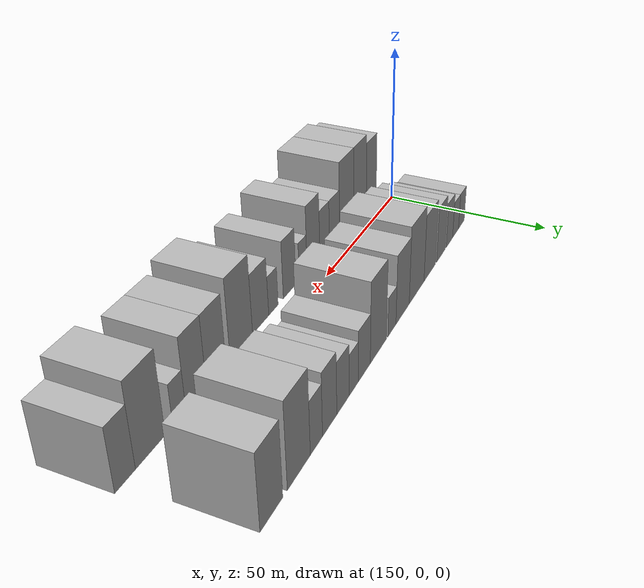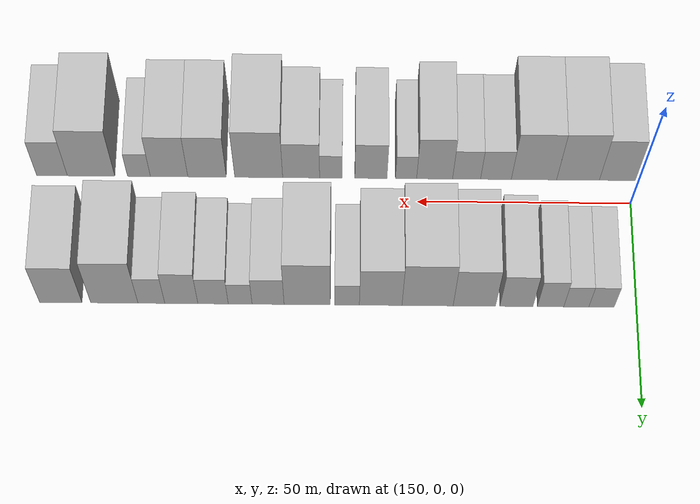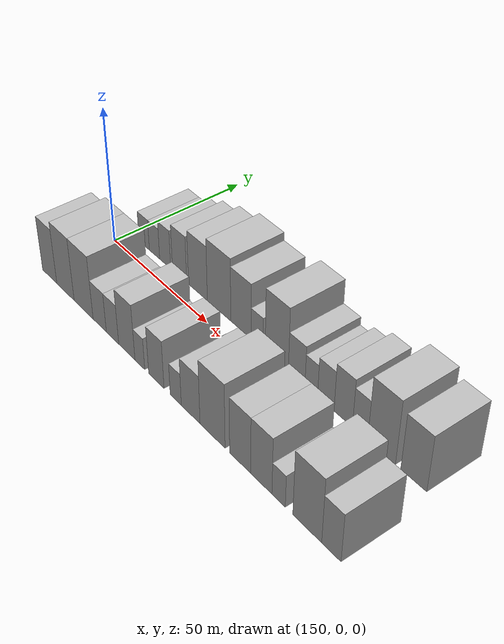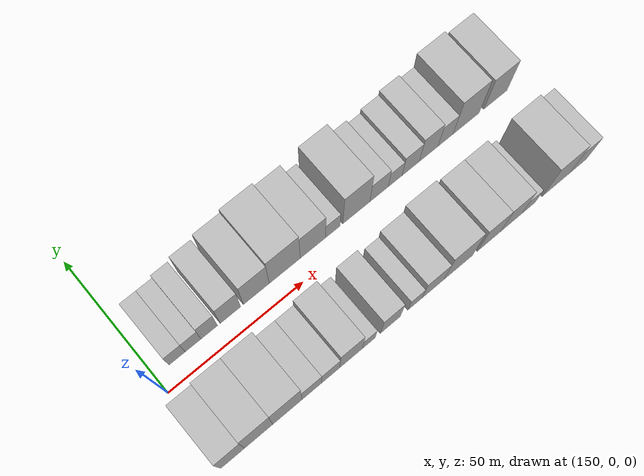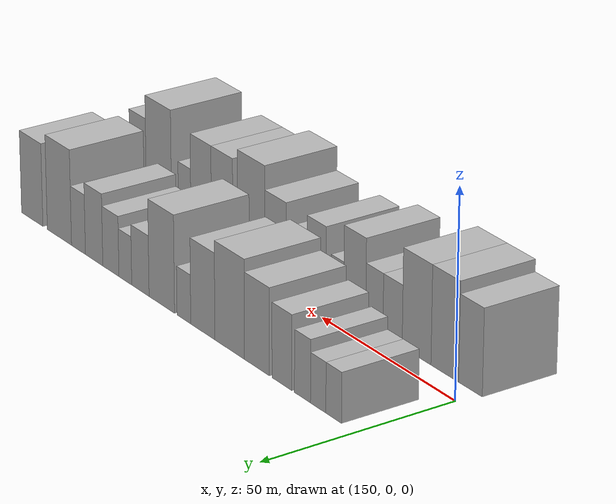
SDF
<sdf version="1.6">
 <world name="default">
  <model name="building_17">
   <static>1</static>
   <pose>158.0082 16.0000 0 0.000000 0.000000 1.570796</pose>
   <link name="link">
    <pose>0 0 6.00 0 0 0</pose>
    <collision name="collision"><geometry><box><size>20.0000 5.8166 12.0000</size></box></geometry></collision>
    <visual name="visual">
     <cast_shadows>0</cast_shadows>
     <geometry><box><size>20.0000 5.8166 12.0000</size></box></geometry>
     <material>
      <script>
       <uri>model://HANNAS_wall/materials/scripts</uri>
       <uri>model://HANNAS_wall/materials/textures</uri>
       <name>vrc/HANNAS_wall</name>
      </script>
     </material>
    </visual>
   </link>
  </model>
  <model name="building_18">
   <static>1</static>
   <pose>163.7879 16.0000 0 0.000000 0.000000 1.570796</pose>
   <link name="link">
    <pose>0 0 6.00 0 0 0</pose>
    <collision name="collision"><geometry><box><size>20.0000 5.7429 12.0000</size></box></geometry></collision>
    <visual name="visual">
     <cast_shadows>0</cast_shadows>
     <geometry><box><size>20.0000 5.7429 12.0000</size></box></geometry>
     <material>
      <script>
       <uri>model://HANNAS_wall/materials/scripts</uri>
       <uri>model://HANNAS_wall/materials/textures</uri>
       <name>vrc/HANNAS_wall</name>
      </script>
     </material>
    </visual>
   </link>
  </model>
  <model name="building_19">
   <static>1</static>
   <pose>169.6911 16.0000 0 0.000000 0.000000 1.570796</pose>
   <link name="link">
    <pose>0 0 7.50 0 0 0</pose>
    <collision name="collision"><geometry><box><size>20.0000 6.0635 15.0000</size></box></geometry></collision>
    <visual name="visual">
     <cast_shadows>0</cast_shadows>
     <geometry><box><size>20.0000 6.0635 15.0000</size></box></geometry>
     <material>
      <script>
       <uri>model://HANNAS_wall/materials/scripts</uri>
       <uri>model://HANNAS_wall/materials/textures</uri>
       <name>vrc/HANNAS_wall</name>
      </script>
     </material>
    </visual>
   </link>
  </model>
  <model name="building_20">
   <static>1</static>
   <pose>177.5209 16.0000 0 0.000000 0.000000 1.570796</pose>
   <link name="link">
    <pose>0 0 9.00 0 0 0</pose>
    <collision name="collision"><geometry><box><size>20.0000 7.5960 18.0000</size></box></geometry></collision>
    <visual name="visual">
     <cast_shadows>0</cast_shadows>
     <geometry><box><size>20.0000 7.5960 18.0000</size></box></geometry>
     <material>
      <script>
       <uri>model://HANNAS_wall/materials/scripts</uri>
       <uri>model://HANNAS_wall/materials/textures</uri>
       <name>vrc/HANNAS_wall</name>
      </script>
     </material>
    </visual>
   </link>
  </model>
  <model name="building_21">
   <static>1</static>
   <pose>187.1836 16.0000 0 0.000000 0.000000 1.570796</pose>
   <link name="link">
    <pose>0 0 10.50 0 0 0</pose>
    <collision name="collision"><geometry><box><size>20.0000 9.7294 21.0000</size></box></geometry></collision>
    <visual name="visual">
     <cast_shadows>0</cast_shadows>
     <geometry><box><size>20.0000 9.7294 21.0000</size></box></geometry>
     <material>
      <script>
       <uri>model://HANNAS_wall/materials/scripts</uri>
       <uri>model://HANNAS_wall/materials/textures</uri>
       <name>vrc/HANNAS_wall</name>
      </script>
     </material>
    </visual>
   </link>
  </model>
  <model name="building_22">
   <static>1</static>
   <pose>197.9205 16.0000 0 0.000000 0.000000 1.570796</pose>
   <link name="link">
    <pose>0 0 12.00 0 0 0</pose>
    <collision name="collision"><geometry><box><size>20.0000 11.7444 24.0000</size></box></geometry></collision>
    <visual name="visual">
     <cast_shadows>0</cast_shadows>
     <geometry><box><size>20.0000 11.7444 24.0000</size></box></geometry>
     <material>
      <script>
       <uri>model://HANNAS_wall/materials/scripts</uri>
       <uri>model://HANNAS_wall/materials/textures</uri>
       <name>vrc/HANNAS_wall</name>
      </script>
     </material>
    </visual>
   </link>
  </model>
  <model name="building_23">
   <static>1</static>
   <pose>208.6838 16.0000 0 0.000000 0.000000 1.570796</pose>
   <link name="link">
    <pose>0 0 10.50 0 0 0</pose>
    <collision name="collision"><geometry><box><size>20.0000 9.7822 21.0000</size></box></geometry></collision>
    <visual name="visual">
     <cast_shadows>0</cast_shadows>
     <geometry><box><size>20.0000 9.7822 21.0000</size></box></geometry>
     <material>
      <script>
       <uri>model://HANNAS_wall/materials/scripts</uri>
       <uri>model://HANNAS_wall/materials/textures</uri>
       <name>vrc/HANNAS_wall</name>
      </script>
     </material>
    </visual>
   </link>
  </model>
  <model name="building_24">
   <static>1</static>
   <pose>216.3989 16.0000 0 0.000000 0.000000 1.570796</pose>
   <link name="link">
    <pose>0 0 6.00 0 0 0</pose>
    <collision name="collision"><geometry><box><size>20.0000 5.6480 12.0000</size></box></geometry></collision>
    <visual name="visual">
     <cast_shadows>0</cast_shadows>
     <geometry><box><size>20.0000 5.6480 12.0000</size></box></geometry>
     <material>
      <script>
       <uri>model://HANNAS_wall/materials/scripts</uri>
       <uri>model://HANNAS_wall/materials/textures</uri>
       <name>vrc/HANNAS_wall</name>
      </script>
     </material>
    </visual>
   </link>
  </model>
  <model name="building_25">
   <static>1</static>
   <pose>225.5383 16.0000 0 0.000000 0.000000 1.570796</pose>
   <link name="link">
    <pose>0 0 12.00 0 0 0</pose>
    <collision name="collision"><geometry><box><size>20.0000 10.6308 24.0000</size></box></geometry></collision>
    <visual name="visual">
     <cast_shadows>0</cast_shadows>
     <geometry><box><size>20.0000 10.6308 24.0000</size></box></geometry>
     <material>
      <script>
       <uri>model://HANNAS_wall/materials/scripts</uri>
       <uri>model://HANNAS_wall/materials/textures</uri>
       <name>vrc/HANNAS_wall</name>
      </script>
     </material>
    </visual>
   </link>
  </model>
  <model name="building_26">
   <static>1</static>
   <pose>234.5276 16.0000 0 0.000000 0.000000 1.570796</pose>
   <link name="link">
    <pose>0 0 7.50 0 0 0</pose>
    <collision name="collision"><geometry><box><size>20.0000 7.3479 15.0000</size></box></geometry></collision>
    <visual name="visual">
     <cast_shadows>0</cast_shadows>
     <geometry><box><size>20.0000 7.3479 15.0000</size></box></geometry>
     <material>
      <script>
       <uri>model://HANNAS_wall/materials/scripts</uri>
       <uri>model://HANNAS_wall/materials/textures</uri>
       <name>vrc/HANNAS_wall</name>
      </script>
     </material>
    </visual>
   </link>
  </model>
  <model name="building_27">
   <static>1</static>
   <pose>240.9351 16.0000 0 0.000000 0.000000 1.570796</pose>
   <link name="link">
    <pose>0 0 6.00 0 0 0</pose>
    <collision name="collision"><geometry><box><size>20.0000 5.4671 12.0000</size></box></geometry></collision>
    <visual name="visual">
     <cast_shadows>0</cast_shadows>
     <geometry><box><size>20.0000 5.4671 12.0000</size></box></geometry>
     <material>
      <script>
       <uri>model://HANNAS_wall/materials/scripts</uri>
       <uri>model://HANNAS_wall/materials/textures</uri>
       <name>vrc/HANNAS_wall</name>
      </script>
     </material>
    </visual>
   </link>
  </model>
  <model name="building_28">
   <static>1</static>
   <pose>247.1524 16.0000 0 0.000000 0.000000 1.570796</pose>
   <link name="link">
    <pose>0 0 7.50 0 0 0</pose>
    <collision name="collision"><geometry><box><size>20.0000 6.9674 15.0000</size></box></geometry></collision>
    <visual name="visual">
     <cast_shadows>0</cast_shadows>
     <geometry><box><size>20.0000 6.9674 15.0000</size></box></geometry>
     <material>
      <script>
       <uri>model://HANNAS_wall/materials/scripts</uri>
       <uri>model://HANNAS_wall/materials/textures</uri>
       <name>vrc/HANNAS_wall</name>
      </script>
     </material>
    </visual>
   </link>
  </model>
  <model name="building_29">
   <static>1</static>
   <pose>254.4423 16.0000 0 0.000000 0.000000 1.570796</pose>
   <link name="link">
    <pose>0 0 9.00 0 0 0</pose>
    <collision name="collision"><geometry><box><size>20.0000 7.6125 18.0000</size></box></geometry></collision>
    <visual name="visual">
     <cast_shadows>0</cast_shadows>
     <geometry><box><size>20.0000 7.6125 18.0000</size></box></geometry>
     <material>
      <script>
       <uri>model://HANNAS_wall/materials/scripts</uri>
       <uri>model://HANNAS_wall/materials/textures</uri>
       <name>vrc/HANNAS_wall</name>
      </script>
     </material>
    </visual>
   </link>
  </model>
  <model name="building_30">
   <static>1</static>
   <pose>261.3294 16.0000 0 0.000000 0.000000 1.570796</pose>
   <link name="link">
    <pose>0 0 7.50 0 0 0</pose>
    <collision name="collision"><geometry><box><size>20.0000 6.1617 15.0000</size></box></geometry></collision>
    <visual name="visual">
     <cast_shadows>0</cast_shadows>
     <geometry><box><size>20.0000 6.1617 15.0000</size></box></geometry>
     <material>
      <script>
       <uri>model://HANNAS_wall/materials/scripts</uri>
       <uri>model://HANNAS_wall/materials/textures</uri>
       <name>vrc/HANNAS_wall</name>
      </script>
     </material>
    </visual>
   </link>
  </model>
  <model name="building_31">
   <static>1</static>
   <pose>269.8403 16.0000 0 0.000000 0.000000 1.570796</pose>
   <link name="link">
    <pose>0 0 12.00 0 0 0</pose>
    <collision name="collision"><geometry><box><size>20.0000 10.8602 24.0000</size></box></geometry></collision>
    <visual name="visual">
     <cast_shadows>0</cast_shadows>
     <geometry><box><size>20.0000 10.8602 24.0000</size></box></geometry>
     <material>
      <script>
       <uri>model://HANNAS_wall/materials/scripts</uri>
       <uri>model://HANNAS_wall/materials/textures</uri>
       <name>vrc/HANNAS_wall</name>
      </script>
     </material>
    </visual>
   </link>
  </model>
  <model name="building_32">
   <static>1</static>
   <pose>282.1423 16.0000 0 0.000000 0.000000 1.570796</pose>
   <link name="link">
    <pose>0 0 10.50 0 0 0</pose>
    <collision name="collision"><geometry><box><size>20.0000 9.7439 21.0000</size></box></geometry></collision>
    <visual name="visual">
     <cast_shadows>0</cast_shadows>
     <geometry><box><size>20.0000 9.7439 21.0000</size></box></geometry>
     <material>
      <script>
       <uri>model://HANNAS_wall/materials/scripts</uri>
       <uri>model://HANNAS_wall/materials/textures</uri>
       <name>vrc/HANNAS_wall</name>
      </script>
     </material>
    </visual>
   </link>
  </model>
  <model name="building_46">
   <static>1</static>
   <pose>152.7676 -16.0000 0 0.000000 0.000000 1.570796</pose>
   <link name="link">
    <pose>0 0 10.50 0 0 0</pose>
    <collision name="collision"><geometry><box><size>20.0000 8.5126 21.0000</size></box></geometry></collision>
    <visual name="visual">
     <cast_shadows>0</cast_shadows>
     <geometry><box><size>20.0000 8.5126 21.0000</size></box></geometry>
     <material>
      <script>
       <uri>model://HANNAS_wall/materials/scripts</uri>
       <uri>model://HANNAS_wall/materials/textures</uri>
       <name>vrc/HANNAS_wall</name>
      </script>
     </material>
    </visual>
   </link>
  </model>
  <model name="building_47">
   <static>1</static>
   <pose>162.0728 -16.0000 0 0.000000 0.000000 1.570796</pose>
   <link name="link">
    <pose>0 0 12.00 0 0 0</pose>
    <collision name="collision"><geometry><box><size>20.0000 10.0980 24.0000</size></box></geometry></collision>
    <visual name="visual">
     <cast_shadows>0</cast_shadows>
     <geometry><box><size>20.0000 10.0980 24.0000</size></box></geometry>
     <material>
      <script>
       <uri>model://HANNAS_wall/materials/scripts</uri>
       <uri>model://HANNAS_wall/materials/textures</uri>
       <name>vrc/HANNAS_wall</name>
      </script>
     </material>
    </visual>
   </link>
  </model>
  <model name="building_48">
   <static>1</static>
   <pose>172.4769 -16.0000 0 0.000000 0.000000 1.570796</pose>
   <link name="link">
    <pose>0 0 12.00 0 0 0</pose>
    <collision name="collision"><geometry><box><size>20.0000 10.7101 24.0000</size></box></geometry></collision>
    <visual name="visual">
     <cast_shadows>0</cast_shadows>
     <geometry><box><size>20.0000 10.7101 24.0000</size></box></geometry>
     <material>
      <script>
       <uri>model://HANNAS_wall/materials/scripts</uri>
       <uri>model://HANNAS_wall/materials/textures</uri>
       <name>vrc/HANNAS_wall</name>
      </script>
     </material>
    </visual>
   </link>
  </model>
  <model name="building_49">
   <static>1</static>
   <pose>181.4621 -16.0000 0 0.000000 0.000000 1.570796</pose>
   <link name="link">
    <pose>0 0 7.50 0 0 0</pose>
    <collision name="collision"><geometry><box><size>20.0000 7.2603 15.0000</size></box></geometry></collision>
    <visual name="visual">
     <cast_shadows>0</cast_shadows>
     <geometry><box><size>20.0000 7.2603 15.0000</size></box></geometry>
     <material>
      <script>
       <uri>model://HANNAS_wall/materials/scripts</uri>
       <uri>model://HANNAS_wall/materials/textures</uri>
       <name>vrc/HANNAS_wall</name>
      </script>
     </material>
    </visual>
   </link>
  </model>
  <model name="building_50">
   <static>1</static>
   <pose>188.4011 -16.0000 0 0.000000 0.000000 1.570796</pose>
   <link name="link">
    <pose>0 0 7.50 0 0 0</pose>
    <collision name="collision"><geometry><box><size>20.0000 6.6177 15.0000</size></box></geometry></collision>
    <visual name="visual">
     <cast_shadows>0</cast_shadows>
     <geometry><box><size>20.0000 6.6177 15.0000</size></box></geometry>
     <material>
      <script>
       <uri>model://HANNAS_wall/materials/scripts</uri>
       <uri>model://HANNAS_wall/materials/textures</uri>
       <name>vrc/HANNAS_wall</name>
      </script>
     </material>
    </visual>
   </link>
  </model>
  <model name="building_51">
   <static>1</static>
   <pose>195.9518 -16.0000 0 0.000000 0.000000 1.570796</pose>
   <link name="link">
    <pose>0 0 10.50 0 0 0</pose>
    <collision name="collision"><geometry><box><size>20.0000 8.4837 21.0000</size></box></geometry></collision>
    <visual name="visual">
     <cast_shadows>0</cast_shadows>
     <geometry><box><size>20.0000 8.4837 21.0000</size></box></geometry>
     <material>
      <script>
       <uri>model://HANNAS_wall/materials/scripts</uri>
       <uri>model://HANNAS_wall/materials/textures</uri>
       <name>vrc/HANNAS_wall</name>
      </script>
     </material>
    </visual>
   </link>
  </model>
  <model name="building_52">
   <static>1</static>
   <pose>202.6838 -16.0000 0 0.000000 0.000000 1.570796</pose>
   <link name="link">
    <pose>0 0 6.00 0 0 0</pose>
    <collision name="collision"><geometry><box><size>20.0000 4.9804 12.0000</size></box></geometry></collision>
    <visual name="visual">
     <cast_shadows>0</cast_shadows>
     <geometry><box><size>20.0000 4.9804 12.0000</size></box></geometry>
     <material>
      <script>
       <uri>model://HANNAS_wall/materials/scripts</uri>
       <uri>model://HANNAS_wall/materials/textures</uri>
       <name>vrc/HANNAS_wall</name>
      </script>
     </material>
    </visual>
   </link>
  </model>
  <model name="building_53">
   <static>1</static>
   <pose>210.9725 -16.0000 0 0.000000 0.000000 1.570796</pose>
   <link name="link">
    <pose>0 0 9.00 0 0 0</pose>
    <collision name="collision"><geometry><box><size>20.0000 7.5971 18.0000</size></box></geometry></collision>
    <visual name="visual">
     <cast_shadows>0</cast_shadows>
     <geometry><box><size>20.0000 7.5971 18.0000</size></box></geometry>
     <material>
      <script>
       <uri>model://HANNAS_wall/materials/scripts</uri>
       <uri>model://HANNAS_wall/materials/textures</uri>
       <name>vrc/HANNAS_wall</name>
      </script>
     </material>
    </visual>
   </link>
  </model>
  <model name="building_54">
   <static>1</static>
   <pose>220.4378 -16.0000 0 0.000000 0.000000 1.570796</pose>
   <link name="link">
    <pose>0 0 6.00 0 0 0</pose>
    <collision name="collision"><geometry><box><size>20.0000 5.3335 12.0000</size></box></geometry></collision>
    <visual name="visual">
     <cast_shadows>0</cast_shadows>
     <geometry><box><size>20.0000 5.3335 12.0000</size></box></geometry>
     <material>
      <script>
       <uri>model://HANNAS_wall/materials/scripts</uri>
       <uri>model://HANNAS_wall/materials/textures</uri>
       <name>vrc/HANNAS_wall</name>
      </script>
     </material>
    </visual>
   </link>
  </model>
  <model name="building_55">
   <static>1</static>
   <pose>227.4697 -16.0000 0 0.000000 0.000000 1.570796</pose>
   <link name="link">
    <pose>0 0 9.00 0 0 0</pose>
    <collision name="collision"><geometry><box><size>20.0000 8.7302 18.0000</size></box></geometry></collision>
    <visual name="visual">
     <cast_shadows>0</cast_shadows>
     <geometry><box><size>20.0000 8.7302 18.0000</size></box></geometry>
     <material>
      <script>
       <uri>model://HANNAS_wall/materials/scripts</uri>
       <uri>model://HANNAS_wall/materials/textures</uri>
       <name>vrc/HANNAS_wall</name>
      </script>
     </material>
    </visual>
   </link>
  </model>
  <model name="building_56">
   <static>1</static>
   <pose>237.4937 -16.0000 0 0.000000 0.000000 1.570796</pose>
   <link name="link">
    <pose>0 0 12.00 0 0 0</pose>
    <collision name="collision"><geometry><box><size>20.0000 11.3179 24.0000</size></box></geometry></collision>
    <visual name="visual">
     <cast_shadows>0</cast_shadows>
     <geometry><box><size>20.0000 11.3179 24.0000</size></box></geometry>
     <material>
      <script>
       <uri>model://HANNAS_wall/materials/scripts</uri>
       <uri>model://HANNAS_wall/materials/textures</uri>
       <name>vrc/HANNAS_wall</name>
      </script>
     </material>
    </visual>
   </link>
  </model>
  <model name="building_57">
   <static>1</static>
   <pose>249.6970 -16.0000 0 0.000000 0.000000 1.570796</pose>
   <link name="link">
    <pose>0 0 10.50 0 0 0</pose>
    <collision name="collision"><geometry><box><size>20.0000 9.0886 21.0000</size></box></geometry></collision>
    <visual name="visual">
     <cast_shadows>0</cast_shadows>
     <geometry><box><size>20.0000 9.0886 21.0000</size></box></geometry>
     <material>
      <script>
       <uri>model://HANNAS_wall/materials/scripts</uri>
       <uri>model://HANNAS_wall/materials/textures</uri>
       <name>vrc/HANNAS_wall</name>
      </script>
     </material>
    </visual>
   </link>
  </model>
  <model name="building_58">
   <static>1</static>
   <pose>258.6728 -16.0000 0 0.000000 0.000000 1.570796</pose>
   <link name="link">
    <pose>0 0 10.50 0 0 0</pose>
    <collision name="collision"><geometry><box><size>20.0000 8.8630 21.0000</size></box></geometry></collision>
    <visual name="visual">
     <cast_shadows>0</cast_shadows>
     <geometry><box><size>20.0000 8.8630 21.0000</size></box></geometry>
     <material>
      <script>
       <uri>model://HANNAS_wall/materials/scripts</uri>
       <uri>model://HANNAS_wall/materials/textures</uri>
       <name>vrc/HANNAS_wall</name>
      </script>
     </material>
    </visual>
   </link>
  </model>
  <model name="building_59">
   <static>1</static>
   <pose>265.8117 -16.0000 0 0.000000 0.000000 1.570796</pose>
   <link name="link">
    <pose>0 0 6.00 0 0 0</pose>
    <collision name="collision"><geometry><box><size>20.0000 5.4147 12.0000</size></box></geometry></collision>
    <visual name="visual">
     <cast_shadows>0</cast_shadows>
     <geometry><box><size>20.0000 5.4147 12.0000</size></box></geometry>
     <material>
      <script>
       <uri>model://HANNAS_wall/materials/scripts</uri>
       <uri>model://HANNAS_wall/materials/textures</uri>
       <name>vrc/HANNAS_wall</name>
      </script>
     </material>
    </visual>
   </link>
  </model>
  <model name="building_60">
   <static>1</static>
   <pose>277.1212 -16.0000 0 0.000000 0.000000 1.570796</pose>
   <link name="link">
    <pose>0 0 12.00 0 0 0</pose>
    <collision name="collision"><geometry><box><size>20.0000 11.2043 24.0000</size></box></geometry></collision>
    <visual name="visual">
     <cast_shadows>0</cast_shadows>
     <geometry><box><size>20.0000 11.2043 24.0000</size></box></geometry>
     <material>
      <script>
       <uri>model://HANNAS_wall/materials/scripts</uri>
       <uri>model://HANNAS_wall/materials/textures</uri>
       <name>vrc/HANNAS_wall</name>
      </script>
     </material>
    </visual>
   </link>
  </model>
  <model name="building_61">
   <static>1</static>
   <pose>286.3606 -16.0000 0 0.000000 0.000000 1.570796</pose>
   <link name="link">
    <pose>0 0 9.00 0 0 0</pose>
    <collision name="collision"><geometry><box><size>20.0000 7.2746 18.0000</size></box></geometry></collision>
    <visual name="visual">
     <cast_shadows>0</cast_shadows>
     <geometry><box><size>20.0000 7.2746 18.0000</size></box></geometry>
     <material>
      <script>
       <uri>model://HANNAS_wall/materials/scripts</uri>
       <uri>model://HANNAS_wall/materials/textures</uri>
       <name>vrc/HANNAS_wall</name>
      </script>
     </material>
    </visual>
   </link>
  </model>
 </world>
</sdf>
